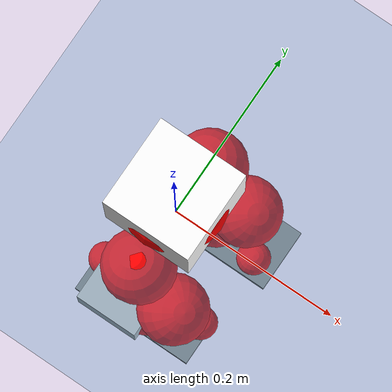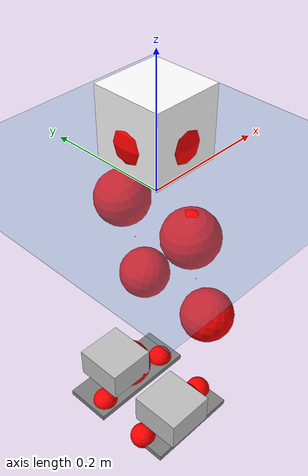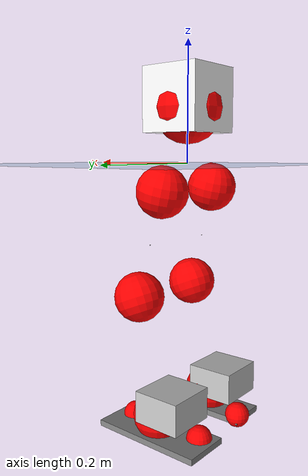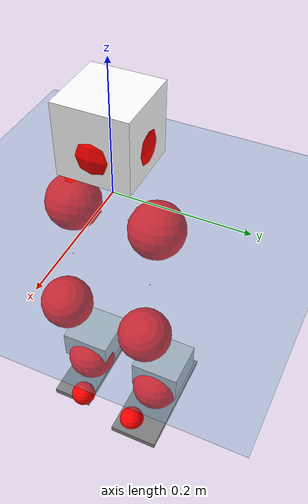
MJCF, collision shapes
<mujoco model="pi_12dof_release_v1">
  <compiler angle="radian" assetdir="assets" balanceinertia="true" inertiafromgeom="false"/>

  <option timestep="0.005" density="1.2" viscosity="2e-05"/>

  <size nkey="1"/>

  <visual>
    <quality shadowsize="8192"/>
    <map shadowclip="0.5"/>
  </visual>

  <default>
    <default class="/">
      <joint armature="0.01" damping="0.01" frictionloss="0.01"/>
      <geom contype="0" conaffinity="0" group="1" solref="-1000 -80"/>
      <site size="0.01 0.005 0.005" group="5"/>
      <general forcelimited="true" biastype="affine" gainprm="20" biasprm="0 -20 -0.5"/>
      <default class="foot">
        <geom size="0.0845 0.036 0.005" type="box" condim="6" group="4" priority="1" friction="0.9 0.2 0.2" solimp="0.015 1 0.005"/>
      </default>
      <default class="reward_collision_sphere">
        <geom group="5" rgba="1 0 0 1"/>
      </default>
    </default>
  </default>

  <asset>
    <texture type="skybox" colorspace="auto" name="//unnamed_texture_0" builtin="gradient" rgb1="0.95 0.95 0.95" rgb2="0.95 0.95 0.95" width="100" height="600"/>
    <texture type="2d" colorspace="auto" name="texplane" builtin="checker" rgb1="0.345 0.575 0.748" rgb2="0.345 0.575 0.748" markrgb="1 1 1" width="512" height="512"/>
    <material name="MatPlane" class="/" texture="texplane" texuniform="true" texrepeat="2 2" specular="0.9"/>
    <mesh name="baselink_1" class="/" file="baselink_1.STL"/>
    <mesh name="r_hip_pitch_link" class="/" file="r_hip_pitch_link.STL"/>
    <mesh name="r_hip_roll_link" class="/" file="r_hip_roll_link.STL"/>
    <mesh name="r_thigh_link" class="/" file="r_thigh_link.STL"/>
    <mesh name="r_calf_link" class="/" file="r_calf_link.STL"/>
    <mesh name="r_ankle_pitch_link" class="/" file="r_ankle_pitch_link.STL"/>
    <mesh name="r_ankle_roll_link" class="/" file="r_ankle_roll_link.STL"/>
    <mesh name="l_hip_pitch_link" class="/" file="l_hip_pitch_link.STL"/>
    <mesh name="l_hip_roll_link" class="/" file="l_hip_roll_link.STL"/>
    <mesh name="l_thigh_link" class="/" file="l_thigh_link.STL"/>
    <mesh name="l_calf_link" class="/" file="l_calf_link.STL"/>
    <mesh name="l_ankle_pitch_link" class="/" file="l_ankle_pitch_link.STL"/>
    <mesh name="l_ankle_roll_link" class="/" file="l_ankle_roll_link.STL"/>
  </asset>

  <worldbody>
    <geom name="floor" class="/" size="100 100 0.125" type="plane" group="0" material="MatPlane"/>
    <light name="toplight_shadow" class="/" pos="0 0 5" dir="0.0990148 0.0990148 -0.990148" type="directional" ambient="0.04 0.04 0.04" diffuse="0.55 0.55 0.55" specular="0.12 0.12 0.12"/>
    <light name="toplight_fill" class="/" pos="0 0 5" dir="0.0990148 0.0990148 -0.990148" type="directional" castshadow="false" ambient="0.04 0.04 0.04" diffuse="0.3 0.3 0.3" specular="0.08 0.08 0.08"/>
    <body name="trunk" pos="-0.000281847 0.000184869 -0.00221953" quat="1 0.000239077 0.000337031 -0.000252694">
      <inertial pos="0.00167042 0.000203949 0.0548038" quat="0.695411 0.0102111 0.00865603 0.718487" mass="2.51936" diaginertia="0.0109781 0.00347033 0.0162513"/>
      <joint name="//unnamed_joint_0" type="free"/>
      <geom name="//unnamed_geom_1" class="/" type="mesh" density="0" rgba="1 1 1 1" mesh="baselink_1"/>
      <geom name="//unnamed_geom_2" class="/" size="0.0530198 0.0530198 0.0530198" pos="0 0 0.10555" type="box" rgba="1 1 1 1"/>
      <geom name="//unnamed_geom_3" class="reward_collision_sphere" size="0.0583218" pos="0 0 0.0923564"/>
      <site name="imu" class="/" pos="0.0121194 -0.013786 0.0127802" size="0.010604"/>
      <camera name="track" class="/" pos="0 -1.66707 0" quat="0.707107 0.707107 0 0" mode="trackcom"/>
      <camera name="ego_camera" class="/" pos="0.0771208 0 0.237488" quat="-0.5 -0.5 0.5 0.5"/>
      <body name="r_hip_pitch_link" pos="-0.0005793 -0.0213871 -0.0419005" quat="0.992324 9.00269e-05 -0.123663 0.000409587">
        <inertial pos="-0.00022475 -0.0464451 -0.00300807" quat="-0.0194269 0.707024 -0.0281404 0.706362" mass="0.420098" diaginertia="0.000121531 3.71002e-05 0.000334547"/>
        <joint name="r_hip_pitch_joint" class="/" pos="0 0 0" axis="-0.00207363 -0.999997 -0.00153222" stiffness="0.00728619" range="-1.7523 1.20131" armature="0.00917637" damping="0.00228579" frictionloss="0.00955916"/>
        <geom name="//unnamed_geom_4" class="/" type="mesh" density="0" rgba="0.75294 0.75294 0.75294 1" mesh="r_hip_pitch_link"/>
        <geom name="//unnamed_geom_5" class="/" size="0.000530198 0.000530198 0.000530198" type="box" rgba="0.75294 0.75294 0.75294 1"/>
        <body name="r_hip_roll_link" pos="-0.0014683 -0.0462865 0.0029266" quat="1 1.76966e-05 0.000112572 -2.31965e-05">
          <inertial pos="-0.001466 0.00122802 -0.0831131" quat="0.708333 -0.0824302 -0.0821661 0.696217" mass="0.468098" diaginertia="0.000381385 0.000113225 0.000511226"/>
          <joint name="r_hip_roll_joint" class="/" pos="0 0 0" axis="-0.999969 -0.00755047 -0.00243956" range="-0.117984 0.507496" armature="0.0103202" damping="0.0281844" frictionloss="0.01205"/>
          <geom name="//unnamed_geom_6" class="/" type="mesh" density="0" rgba="0.75294 0.75294 0.75294 1" mesh="r_hip_roll_link"/>
          <geom name="//unnamed_geom_7" class="/" size="0.000530198 0.000530198 0.000530198" type="box" rgba="0.75294 0.75294 0.75294 1"/>
          <geom name="//unnamed_geom_8" class="reward_collision_sphere" size="0.0424158"/>
          <body name="r_thigh_link" pos="-0.00284407 0.0026051 -0.089674" quat="1 -1.64073e-06 0.000101589 0.000256758">
            <inertial pos="0.000830647 0.00071009 -0.0615494" quat="0.737604 0.675233 0.00133883 0.00015965" mass="0.126865" diaginertia="0.000143342 3.84136e-05 0.00022344"/>
            <joint name="r_thigh_joint" class="/" pos="0 0 0" axis="0.00247154 -0.00334462 -0.999991" stiffness="0.00117842" range="-0.294213 0.554463" armature="0.0113388" damping="0.00851753" frictionloss="0.0102794"/>
            <geom name="//unnamed_geom_9" class="/" type="mesh" density="0" rgba="0.75294 0.75294 0.75294 1" mesh="r_thigh_link"/>
            <geom name="//unnamed_geom_10" class="/" size="0.000530198 0.000530198 0.000530198" type="box" rgba="0.75294 0.75294 0.75294 1"/>
            <body name="r_calf_link" pos="0.00244181 -0.00475449 -0.0928164" quat="0.947853 6.82475e-05 0.318708 0.000431181">
              <inertial pos="0.000834461 0.000420448 -0.0930603" quat="0.999984 -0.00308049 4.76023e-05 0.0047313" mass="0.986947" diaginertia="0.00404962 0.0013461 0.000697092"/>
              <joint name="r_calf_joint" class="/" pos="0 0 0" axis="-8.42225e-05 -1 0.000867116" stiffness="0.00484193" range="-1.70518 0.657024" armature="0.0107029" damping="0.00637517" frictionloss="0.00953866"/>
              <geom name="//unnamed_geom_11" class="/" type="mesh" density="0" rgba="0.75294 0.75294 0.75294 1" mesh="r_calf_link"/>
              <geom name="//unnamed_geom_12" class="/" size="0.000530198 0.000530198 0.000530198" type="box" rgba="0.75294 0.75294 0.75294 1"/>
              <geom name="//unnamed_geom_13" class="reward_collision_sphere" size="0.0424158"/>
              <body name="r_ankle_pitch_link" pos="-0.000519743 0.00290879 -0.184893" quat="0.98024 -0.000446294 -0.197813 0.000230101">
                <inertial pos="0.00481143 0.00267079 -0.000270777" quat="0.0017259 0.707562 -0.00180054 0.706647" mass="0.200445" diaginertia="0.000348408 8.53439e-05 0.000480278"/>
                <joint name="r_ankle_pitch_joint" class="/" pos="0 0 0" axis="0.0105736 -0.999919 0.00708835" range="-1.34706 0.555504" armature="0.0105447" damping="0.0118521" frictionloss="0.0112739"/>
                <geom name="//unnamed_geom_14" class="/" type="mesh" density="0" rgba="0.75294 0.75294 0.75294 1" mesh="r_ankle_pitch_link"/>
                <geom name="//unnamed_geom_15" class="/" size="0.0413554 0.0424158 0.0265099" type="box" rgba="0.75294 0.75294 0.75294 1"/>
                <body name="r_ankle_roll_link" pos="0.0774821 0.00478407 0.00245721" quat="1 -0.000335049 -0.000101604 1.28339e-05">
                  <inertial pos="-0.0270273 -0.00134492 -0.0194764" quat="0.559054 0.422353 0.436261 0.564582" mass="0.63002" diaginertia="0.00134919 0.000421144 0.00114909"/>
                  <joint name="r_ankle_roll_joint" class="/" pos="0 0 0" axis="-0.999994 0.00308006 -0.00166141" stiffness="0.0048196" range="-0.151404 0.138601" armature="0.010712" damping="0.00932176" frictionloss="0.0102265"/>
                  <geom name="//unnamed_geom_16" class="/" type="mesh" density="0" rgba="0.75294 0.75294 0.75294 1" mesh="r_ankle_roll_link"/>
                  <geom name="//unnamed_geom_17" class="/" type="mesh" rgba="0.75294 0.75294 0.75294 1" mesh="r_ankle_roll_link"/>
                  <geom name="right_foot" class="foot" size="0.0813434 0.0338867 0.00511113" pos="-0.0524421 0 -0.0580526"/>
                  <geom name="//unnamed_geom_19" class="reward_collision_sphere" size="0.0424158" pos="-0.0514139 0 -0.0263875"/>
                  <geom name="//unnamed_geom_20" class="reward_collision_sphere" size="0.0212079" pos="0.0154242 0.0166707 -0.0527751"/>
                  <geom name="//unnamed_geom_21" class="reward_collision_sphere" size="0.0212079" pos="-0.123393 0.0166707 -0.0527751"/>
                  <site name="right_foot" class="foot" pos="-0.0524421 0 -0.0580526" size="0.010604"/>
                </body>
              </body>
            </body>
          </body>
        </body>
      </body>
      <body name="l_hip_pitch_link" pos="-0.00202049 0.0208764 -0.0423038" quat="0.992182 6.92575e-05 -0.124803 -0.000294901">
        <inertial pos="-0.00190987 0.0438551 0.000897018" quat="-0.0412185 0.701035 0.0278858 0.711388" mass="0.472156" diaginertia="0.000152174 4.3667e-05 0.00038938"/>
        <joint name="l_hip_pitch_joint" class="/" pos="0 0 0" axis="0.00356008 0.999994 0.000260571" stiffness="0.000816625" range="-1.21528 1.74014" armature="0.0120852" damping="0.0253476" frictionloss="0.00987303"/>
        <geom name="//unnamed_geom_22" class="/" type="mesh" density="0" rgba="0.75294 0.75294 0.75294 1" mesh="l_hip_pitch_link"/>
        <geom name="//unnamed_geom_23" class="/" size="0.000530198 0.000530198 0.000530198" type="box" rgba="0.75294 0.75294 0.75294 1"/>
        <body name="l_hip_roll_link" pos="0.00160002 0.0460308 2.10669e-05" quat="0.999999 0.000765041 -0.00104817 0.000631257">
          <inertial pos="-0.0029249 -0.00240967 -0.0806233" quat="0.704171 -0.07159 -0.0669619 0.703231" mass="0.455868" diaginertia="0.000380753 0.000108279 0.000533821"/>
          <joint name="l_hip_roll_joint" class="/" pos="0 0 0" axis="-0.999923 -0.00285374 -0.0121089" range="-0.519154 0.11372" armature="0.0114378" damping="0.0132579" frictionloss="0.0103849"/>
          <geom name="//unnamed_geom_24" class="/" type="mesh" density="0" rgba="0.75294 0.75294 0.75294 1" mesh="l_hip_roll_link"/>
          <geom name="//unnamed_geom_25" class="/" size="0.000530198 0.000530198 0.000530198" type="box" rgba="0.75294 0.75294 0.75294 1"/>
          <geom name="//unnamed_geom_26" class="reward_collision_sphere" size="0.0424158"/>
          <body name="l_thigh_link" pos="0.00226157 0.00112697 -0.0909568" quat="1 -0.000398838 0.000444505 -0.00048045">
            <inertial pos="0.00180806 -0.00405987 -0.0647898" quat="0.675115 0.737712 -0.000106534 -0.000191536" mass="0.130527" diaginertia="0.000137196 3.76749e-05 0.000223525"/>
            <joint name="l_thigh_joint" class="/" pos="0 0 0" axis="-0.00146187 -0.0074954 -0.999971" range="-0.564398 0.275589" armature="0.00921466" damping="0.0154838" frictionloss="0.00943279"/>
            <geom name="//unnamed_geom_27" class="/" type="mesh" density="0" rgba="0.75294 0.75294 0.75294 1" mesh="l_thigh_link"/>
            <geom name="//unnamed_geom_28" class="/" size="0.000530198 0.000530198 0.000530198" type="box" rgba="0.75294 0.75294 0.75294 1"/>
            <body name="l_calf_link" pos="-0.000711631 0.00242705 -0.0930553" quat="0.94768 -0.000528246 0.31922 -0.000330278">
              <inertial pos="0.0011436 0.00537644 -0.0950249" quat="0.999978 0.000888805 -0.0039554 0.00530379" mass="0.917966" diaginertia="0.00404958 0.00131672 0.000675005"/>
              <joint name="l_calf_joint" class="/" pos="0 0 0" axis="0.00147053 0.999998 -0.00147082" stiffness="0.0125175" range="-0.62047 1.59655" armature="0.0109916" damping="0.0162305" frictionloss="0.00925746"/>
              <geom name="//unnamed_geom_29" class="/" type="mesh" density="0" rgba="0.75294 0.75294 0.75294 1" mesh="l_calf_link"/>
              <geom name="//unnamed_geom_30" class="/" size="0.000530198 0.000530198 0.000530198" type="box" rgba="0.75294 0.75294 0.75294 1"/>
              <geom name="//unnamed_geom_31" class="reward_collision_sphere" size="0.0424158"/>
              <body name="l_ankle_pitch_link" pos="-0.000852894 0.00307839 -0.183749" quat="0.980065 9.96746e-05 -0.198675 -2.46889e-05">
                <inertial pos="0.00502751 -0.00188074 0.00274735" quat="-0.00625269 0.712557 0.00253142 0.701582" mass="0.211326" diaginertia="0.000362573 9.14167e-05 0.000488318"/>
                <joint name="l_ankle_pitch_joint" class="/" pos="0 0 0" axis="0.00116701 0.999999 0.00123329" stiffness="0.00299851" range="-0.48656 1.29172" armature="0.0102015" damping="0.00835412" frictionloss="0.00982199"/>
                <geom name="//unnamed_geom_32" class="/" type="mesh" density="0" rgba="0.75294 0.75294 0.75294 1" mesh="l_ankle_pitch_link"/>
                <geom name="//unnamed_geom_33" class="/" size="0.0413554 0.0424158 0.0265099" type="box" rgba="0.75294 0.75294 0.75294 1"/>
                <body name="l_ankle_roll_link" pos="0.0797019 -0.000572886 0.00139617" quat="0.999999 0.00017415 -0.000987316 0.00011977">
                  <inertial pos="-0.0222789 0.000679176 -0.0195538" quat="0.559231 0.430742 0.434736 0.55922" mass="0.592218" diaginertia="0.00127043 0.000389646 0.00107732"/>
                  <joint name="l_ankle_roll_joint" class="/" pos="0 0 0" axis="-0.999985 0.00110207 0.00541827" range="-0.163209 0.178692" armature="0.0107133" damping="0.0112206" frictionloss="0.0111075"/>
                  <geom name="//unnamed_geom_34" class="/" type="mesh" density="0" rgba="0.75294 0.75294 0.75294 1" mesh="l_ankle_roll_link"/>
                  <geom name="//unnamed_geom_35" class="/" type="mesh" rgba="0.75294 0.75294 0.75294 1" mesh="l_ankle_roll_link"/>
                  <geom name="left_foot" class="foot" size="0.0985388 0.0410909 0.00509146" pos="-0.0524421 0 -0.0580526"/>
                  <geom name="//unnamed_geom_37" class="reward_collision_sphere" size="0.0424158" pos="-0.0514139 0 -0.0263875"/>
                  <geom name="//unnamed_geom_38" class="reward_collision_sphere" size="0.0212079" pos="0.0154242 -0.0166707 -0.0527751"/>
                  <geom name="//unnamed_geom_39" class="reward_collision_sphere" size="0.0212079" pos="-0.123393 -0.0166707 -0.0527751"/>
                  <site name="left_foot" class="foot" pos="-0.0524421 0 -0.0580526" size="0.010604"/>
                </body>
              </body>
            </body>
          </body>
        </body>
      </body>
    </body>
  </worldbody>

  <contact>
    <pair class="/" geom1="floor" geom2="right_foot" name="//unnamed_contact_1"/>
    <pair class="/" geom1="floor" geom2="left_foot" name="//unnamed_contact_0"/>
  </contact>

  <actuator>
    <general name="r_hip_pitch_joint" class="/" joint="r_hip_pitch_joint" forcerange="-20.468 20.468" gainprm="19.8507" biasprm="0 -19.8507 -0.556088"/>
    <general name="r_hip_roll_joint" class="/" joint="r_hip_roll_joint" forcerange="-22.5461 22.5461" gainprm="19.8507" biasprm="0 -19.8507 -0.556088"/>
    <general name="r_thigh_joint" class="/" joint="r_thigh_joint" forcerange="-20.1284 20.1284" gainprm="19.8507" biasprm="0 -19.8507 -0.556088"/>
    <general name="r_calf_joint" class="/" joint="r_calf_joint" forcerange="-24.2249 24.2249" gainprm="19.8507" biasprm="0 -19.8507 -0.556088"/>
    <general name="r_ankle_pitch_joint" class="/" joint="r_ankle_pitch_joint" forcerange="-24.3843 24.3843" gainprm="19.8507" biasprm="0 -19.8507 -0.556088"/>
    <general name="r_ankle_roll_joint" class="/" joint="r_ankle_roll_joint" forcerange="-22.7998 22.7998" gainprm="19.8507" biasprm="0 -19.8507 -0.556088"/>
    <general name="l_hip_pitch_joint" class="/" joint="l_hip_pitch_joint" forcerange="-19.9818 19.9818" gainprm="19.8507" biasprm="0 -19.8507 -0.556088"/>
    <general name="l_hip_roll_joint" class="/" joint="l_hip_roll_joint" forcerange="-22.9814 22.9814" gainprm="19.8507" biasprm="0 -19.8507 -0.556088"/>
    <general name="l_thigh_joint" class="/" joint="l_thigh_joint" forcerange="-23.719 23.719" gainprm="19.8507" biasprm="0 -19.8507 -0.556088"/>
    <general name="l_calf_joint" class="/" joint="l_calf_joint" forcerange="-20.4933 20.4933" gainprm="19.8507" biasprm="0 -19.8507 -0.556088"/>
    <general name="l_ankle_pitch_joint" class="/" joint="l_ankle_pitch_joint" forcerange="-24.2503 24.2503" gainprm="19.8507" biasprm="0 -19.8507 -0.556088"/>
    <general name="l_ankle_roll_joint" class="/" joint="l_ankle_roll_joint" forcerange="-19.9569 19.9569" gainprm="19.8507" biasprm="0 -19.8507 -0.556088"/>
  </actuator>

  <sensor>
    <gyro site="imu" name="imu_angular_velocity"/>
    <velocimeter site="imu" name="imu_linear_velocity"/>
    <framelinvel objtype="site" objname="left_foot" name="left_foot_global_linear_velocity"/>
    <framelinvel objtype="site" objname="right_foot" name="right_foot_global_linear_velocity"/>
  </sensor>

  <keyframe>
    <key name="home" qpos="0 0 0.291 1 0 0 0 0.4 0 0 -0.8 0.4 0 -0.4 0 0 0.8 -0.4 0"/>
  </keyframe>
</mujoco>
